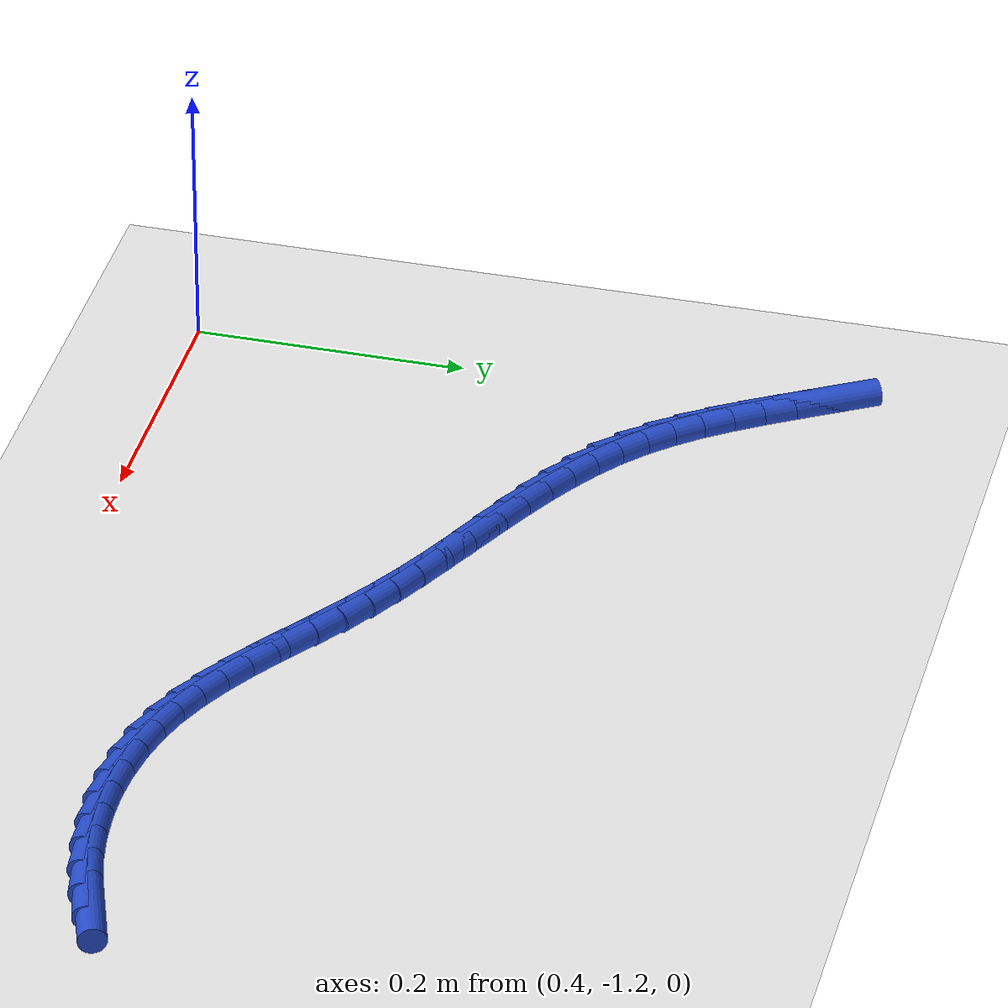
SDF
<sdf version="1.6">
 <world name="default">
  <model name="ground_plane">
   <static>1</static>
   <link name="link">
    <collision name="collision">
     <geometry><plane><normal>0 0 1</normal><size>100 100</size></plane></geometry>
     <surface><friction><ode><mu>100</mu><mu2>50</mu2></ode></friction></surface>
    </collision>
    <visual name="visual">
     <cast_shadows>0</cast_shadows>
     <geometry><plane><normal>0 0 1</normal><size>100 100</size></plane></geometry>
     <material>
      <script><uri>file://media/materials/scripts/gazebo.material</uri><name>Gazebo/WhiteGlow</name></script>
     </material>
    </visual>
   </link>
  </model>
  <model name="line">
   <link name="link_210">
    <pose>1.0827217794591588 -1.0764344914039057 0.01 0 1.57 0.3384205722470146</pose>
    <collision name="collision">
     <geometry><cylinder><radius>0.01</radius><length>0.08</length></cylinder></geometry>
    </collision>
    <visual name="visual">
     <material>
      <script><name>Gazebo/Blue</name><uri>file://media/materials/scripts/gazebo.material</uri></script>
     </material>
     <geometry><cylinder><radius>0.01</radius><length>0.08</length></cylinder></geometry>
    </visual>
   </link>
   <link name="link_211">
    <pose>1.0598111481474783 -1.0844981357043098 0.01 0 1.57 0.2739690183637851</pose>
    <collision name="collision">
     <geometry><cylinder><radius>0.01</radius><length>0.08</length></cylinder></geometry>
    </collision>
    <visual name="visual">
     <material>
      <script><name>Gazebo/Blue</name><uri>file://media/materials/scripts/gazebo.material</uri></script>
     </material>
     <geometry><cylinder><radius>0.01</radius><length>0.08</length></cylinder></geometry>
    </visual>
   </link>
   <link name="link_212">
    <pose>1.0363704554752315 -1.0910858114640698 0.01 0 1.57 0.19546453854779858</pose>
    <collision name="collision">
     <geometry><cylinder><radius>0.01</radius><length>0.08</length></cylinder></geometry>
    </collision>
    <visual name="visual">
     <material>
      <script><name>Gazebo/Blue</name><uri>file://media/materials/scripts/gazebo.material</uri></script>
     </material>
     <geometry><cylinder><radius>0.01</radius><length>0.08</length></cylinder></geometry>
    </visual>
   </link>
   <link name="link_213">
    <pose>1.0123348915349049 -1.0958446731135414 0.01 0 1.57 0.11578168401749918</pose>
    <collision name="collision">
     <geometry><cylinder><radius>0.01</radius><length>0.08</length></cylinder></geometry>
    </collision>
    <visual name="visual">
     <material>
      <script><name>Gazebo/Blue</name><uri>file://media/materials/scripts/gazebo.material</uri></script>
     </material>
     <geometry><cylinder><radius>0.01</radius><length>0.08</length></cylinder></geometry>
    </visual>
   </link>
   <link name="link_214">
    <pose>0.9878940121157465 -1.0986871923584316 0.01 0 1.57 0.036309796247968706</pose>
    <collision name="collision">
     <geometry><cylinder><radius>0.01</radius><length>0.08</length></cylinder></geometry>
    </collision>
    <visual name="visual">
     <material>
      <script><name>Gazebo/Blue</name><uri>file://media/materials/scripts/gazebo.material</uri></script>
     </material>
     <geometry><cylinder><radius>0.01</radius><length>0.08</length></cylinder></geometry>
    </visual>
   </link>
   <link name="link_215">
    <pose>0.9632902020726857 -1.0995809444972071 0.01 0 1.57 -0.04431218619685183</pose>
    <collision name="collision">
     <geometry><cylinder><radius>0.01</radius><length>0.08</length></cylinder></geometry>
    </collision>
    <visual name="visual">
     <material>
      <script><name>Gazebo/Blue</name><uri>file://media/materials/scripts/gazebo.material</uri></script>
     </material>
     <geometry><cylinder><radius>0.01</radius><length>0.08</length></cylinder></geometry>
    </visual>
   </link>
   <link name="link_216">
    <pose>0.9387658462606532 -1.0984935048283362 0.01 0 1.57 -0.12743514459132382</pose>
    <collision name="collision">
     <geometry><cylinder><radius>0.01</radius><length>0.08</length></cylinder></geometry>
    </collision>
    <visual name="visual">
     <material>
      <script><name>Gazebo/Blue</name><uri>file://media/materials/scripts/gazebo.material</uri></script>
     </material>
     <geometry><cylinder><radius>0.01</radius><length>0.08</length></cylinder></geometry>
    </visual>
   </link>
   <link name="link_217">
    <pose>0.9145633295345776 -1.0953924486502853 0.01 0 1.57 -0.21439747763694242</pose>
    <collision name="collision">
     <geometry><cylinder><radius>0.01</radius><length>0.08</length></cylinder></geometry>
    </collision>
    <visual name="visual">
     <material>
      <script><name>Gazebo/Blue</name><uri>file://media/materials/scripts/gazebo.material</uri></script>
     </material>
     <geometry><cylinder><radius>0.01</radius><length>0.08</length></cylinder></geometry>
    </visual>
   </link>
   <link name="link_218">
    <pose>0.8909250367493913 -1.090245351261522 0.01 0 1.57 -0.3064852966238337</pose>
    <collision name="collision">
     <geometry><cylinder><radius>0.01</radius><length>0.08</length></cylinder></geometry>
    </collision>
    <visual name="visual">
     <material>
      <script><name>Gazebo/Blue</name><uri>file://media/materials/scripts/gazebo.material</uri></script>
     </material>
     <geometry><cylinder><radius>0.01</radius><length>0.08</length></cylinder></geometry>
    </visual>
   </link>
   <link name="link_219">
    <pose>0.8680930837191345 -1.083020031288643 0.01 0 1.57 -0.39908870427518084</pose>
    <collision name="collision">
     <geometry><cylinder><radius>0.01</radius><length>0.08</length></cylinder></geometry>
    </collision>
    <visual name="visual">
     <material>
      <script><name>Gazebo/Blue</name><uri>file://media/materials/scripts/gazebo.material</uri></script>
     </material>
     <geometry><cylinder><radius>0.01</radius><length>0.08</length></cylinder></geometry>
    </visual>
   </link>
   <link name="link_220">
    <pose>0.8461970802127202 -1.073786060982771 0.01 0 1.57 -0.4770445023865358</pose>
    <collision name="collision">
     <geometry><cylinder><radius>0.01</radius><length>0.08</length></cylinder></geometry>
    </collision>
    <visual name="visual">
     <material>
      <script><name>Gazebo/Blue</name><uri>file://media/materials/scripts/gazebo.material</uri></script>
     </material>
     <geometry><cylinder><radius>0.01</radius><length>0.08</length></cylinder></geometry>
    </visual>
   </link>
   <link name="link_221">
    <pose>0.8250805408009964 -1.0628717651209867 0.01 0 1.57 -0.5369307318208437</pose>
    <collision name="collision">
     <geometry><cylinder><radius>0.01</radius><length>0.08</length></cylinder></geometry>
    </collision>
    <visual name="visual">
     <material>
      <script><name>Gazebo/Blue</name><uri>file://media/materials/scripts/gazebo.material</uri></script>
     </material>
     <geometry><cylinder><radius>0.01</radius><length>0.08</length></cylinder></geometry>
    </visual>
   </link>
   <link name="link_222">
    <pose>0.8045421750370375 -1.0506459913958281 0.01 0 1.57 -0.5785840659679976</pose>
    <collision name="collision">
     <geometry><cylinder><radius>0.01</radius><length>0.08</length></cylinder></geometry>
    </collision>
    <visual name="visual">
     <material>
      <script><name>Gazebo/Blue</name><uri>file://media/materials/scripts/gazebo.material</uri></script>
     </material>
     <geometry><cylinder><radius>0.01</radius><length>0.08</length></cylinder></geometry>
    </visual>
   </link>
   <link name="link_223">
    <pose>0.7843806924739195 -1.0374775874998345 0.01 0 1.57 -0.6023514608782425</pose>
    <collision name="collision">
     <geometry><cylinder><radius>0.01</radius><length>0.08</length></cylinder></geometry>
    </collision>
    <visual name="visual">
     <material>
      <script><name>Gazebo/Blue</name><uri>file://media/materials/scripts/gazebo.material</uri></script>
     </material>
     <geometry><cylinder><radius>0.01</radius><length>0.08</length></cylinder></geometry>
    </visual>
   </link>
   <link name="link_224">
    <pose>0.7643948026647172 -1.0237354011255444 0.01 0 1.57 -0.6086775720377422</pose>
    <collision name="collision">
     <geometry><cylinder><radius>0.01</radius><length>0.08</length></cylinder></geometry>
    </collision>
    <visual name="visual">
     <material>
      <script><name>Gazebo/Blue</name><uri>file://media/materials/scripts/gazebo.material</uri></script>
     </material>
     <geometry><cylinder><radius>0.01</radius><length>0.08</length></cylinder></geometry>
    </visual>
   </link>
   <link name="link_225">
    <pose>0.7443832151625056 -1.009788279965496 0.01 0 1.57 -0.5978850671872448</pose>
    <collision name="collision">
     <geometry><cylinder><radius>0.01</radius><length>0.08</length></cylinder></geometry>
    </collision>
    <visual name="visual">
     <material>
      <script><name>Gazebo/Blue</name><uri>file://media/materials/scripts/gazebo.material</uri></script>
     </material>
     <geometry><cylinder><radius>0.01</radius><length>0.08</length></cylinder></geometry>
    </visual>
   </link>
   <link name="link_226">
    <pose>0.7241446395203595 -0.996005071712228 0.01 0 1.57 -0.5701249668562856</pose>
    <collision name="collision">
     <geometry><cylinder><radius>0.01</radius><length>0.08</length></cylinder></geometry>
    </collision>
    <visual name="visual">
     <material>
      <script><name>Gazebo/Blue</name><uri>file://media/materials/scripts/gazebo.material</uri></script>
     </material>
     <geometry><cylinder><radius>0.01</radius><length>0.08</length></cylinder></geometry>
    </visual>
   </link>
   <link name="link_227">
    <pose>0.7034777852913549 -0.9827546240582793 0.01 0 1.57 -0.5281828709203871</pose>
    <collision name="collision">
     <geometry><cylinder><radius>0.01</radius><length>0.08</length></cylinder></geometry>
    </collision>
    <visual name="visual">
     <material>
      <script><name>Gazebo/Blue</name><uri>file://media/materials/scripts/gazebo.material</uri></script>
     </material>
     <geometry><cylinder><radius>0.01</radius><length>0.08</length></cylinder></geometry>
    </visual>
   </link>
   <link name="link_228">
    <pose>0.6822180183110997 -0.9703500037345674 0.01 0 1.57 -0.4908540590233366</pose>
    <collision name="collision">
     <geometry><cylinder><radius>0.01</radius><length>0.08</length></cylinder></geometry>
    </collision>
    <visual name="visual">
     <material>
      <script><name>Gazebo/Blue</name><uri>file://media/materials/scripts/gazebo.material</uri></script>
     </material>
     <geometry><cylinder><radius>0.01</radius><length>0.08</length></cylinder></geometry>
    </visual>
   </link>
   <link name="link_229">
    <pose>0.6604546723876827 -0.958717806811403 0.01 0 1.57 -0.46588380249215067</pose>
    <collision name="collision">
     <geometry><cylinder><radius>0.01</radius><length>0.08</length></cylinder></geometry>
    </collision>
    <visual name="visual">
     <material>
      <script><name>Gazebo/Blue</name><uri>file://media/materials/scripts/gazebo.material</uri></script>
     </material>
     <geometry><cylinder><radius>0.01</radius><length>0.08</length></cylinder></geometry>
    </visual>
   </link>
   <link name="link_230">
    <pose>0.6383846023270906 -0.9476210114403466 0.01 0 1.57 -0.45310470452604534</pose>
    <collision name="collision">
     <geometry><cylinder><radius>0.01</radius><length>0.08</length></cylinder></geometry>
    </collision>
    <visual name="visual">
     <material>
      <script><name>Gazebo/Blue</name><uri>file://media/materials/scripts/gazebo.material</uri></script>
     </material>
     <geometry><cylinder><radius>0.01</radius><length>0.08</length></cylinder></geometry>
    </visual>
   </link>
   <link name="link_231">
    <pose>0.6162050487004165 -0.9368220087426562 0.01 0 1.57 -0.4524657764021885</pose>
    <collision name="collision">
     <geometry><cylinder><radius>0.01</radius><length>0.08</length></cylinder></geometry>
    </collision>
    <visual name="visual">
     <material>
      <script><name>Gazebo/Blue</name><uri>file://media/materials/scripts/gazebo.material</uri></script>
     </material>
     <geometry><cylinder><radius>0.01</radius><length>0.08</length></cylinder></geometry>
    </visual>
   </link>
   <link name="link_232">
    <pose>0.5941132520787538 -0.9260831898395903 0.01 0 1.57 -0.4641187075026478</pose>
    <collision name="collision">
     <geometry><cylinder><radius>0.01</radius><length>0.08</length></cylinder></geometry>
    </collision>
    <visual name="visual">
     <material>
      <script><name>Gazebo/Blue</name><uri>file://media/materials/scripts/gazebo.material</uri></script>
     </material>
     <geometry><cylinder><radius>0.01</radius><length>0.08</length></cylinder></geometry>
    </visual>
   </link>
   <link name="link_233">
    <pose>0.5723064530331955 -0.9151669458524065 0.01 0 1.57 -0.4884292167081674</pose>
    <collision name="collision">
     <geometry><cylinder><radius>0.01</radius><length>0.08</length></cylinder></geometry>
    </collision>
    <visual name="visual">
     <material>
      <script><name>Gazebo/Blue</name><uri>file://media/materials/scripts/gazebo.material</uri></script>
     </material>
     <geometry><cylinder><radius>0.01</radius><length>0.08</length></cylinder></geometry>
    </visual>
   </link>
   <link name="link_234">
    <pose>0.5509818921348345 -0.9038356679023629 0.01 0 1.57 -0.5259379468029769</pose>
    <collision name="collision">
     <geometry><cylinder><radius>0.01</radius><length>0.08</length></cylinder></geometry>
    </collision>
    <visual name="visual">
     <material>
      <script><name>Gazebo/Blue</name><uri>file://media/materials/scripts/gazebo.material</uri></script>
     </material>
     <geometry><cylinder><radius>0.01</radius><length>0.08</length></cylinder></geometry>
    </visual>
   </link>
   <link name="link_235">
    <pose>0.5303368099547653 -0.8918517471107181 0.01 0 1.57 -0.5772543832699737</pose>
    <collision name="collision">
     <geometry><cylinder><radius>0.01</radius><length>0.08</length></cylinder></geometry>
    </collision>
    <visual name="visual">
     <material>
      <script><name>Gazebo/Blue</name><uri>file://media/materials/scripts/gazebo.material</uri></script>
     </material>
     <geometry><cylinder><radius>0.01</radius><length>0.08</length></cylinder></geometry>
    </visual>
   </link>
   <link name="link_236">
    <pose>0.5105684470640804 -0.8789775745987302 0.01 0 1.57 -0.6428582397231795</pose>
    <collision name="collision">
     <geometry><cylinder><radius>0.01</radius><length>0.08</length></cylinder></geometry>
    </collision>
    <visual name="visual">
     <material>
      <script><name>Gazebo/Blue</name><uri>file://media/materials/scripts/gazebo.material</uri></script>
     </material>
     <geometry><cylinder><radius>0.01</radius><length>0.08</length></cylinder></geometry>
    </visual>
   </link>
   <link name="link_237">
    <pose>0.49187404403387325 -0.8649755414876569 0.01 0 1.57 -0.7227818274671135</pose>
    <collision name="collision">
     <geometry><cylinder><radius>0.01</radius><length>0.08</length></cylinder></geometry>
    </collision>
    <visual name="visual">
     <material>
      <script><name>Gazebo/Blue</name><uri>file://media/materials/scripts/gazebo.material</uri></script>
     </material>
     <geometry><cylinder><radius>0.01</radius><length>0.08</length></cylinder></geometry>
    </visual>
   </link>
   <link name="link_238">
    <pose>0.4744507359269596 -0.8496081542346671 0.01 0 1.57 -0.8098519608592609</pose>
    <collision name="collision">
     <geometry><cylinder><radius>0.01</radius><length>0.08</length></cylinder></geometry>
    </collision>
    <visual name="visual">
     <material>
      <script><name>Gazebo/Blue</name><uri>file://media/materials/scripts/gazebo.material</uri></script>
     </material>
     <geometry><cylinder><radius>0.01</radius><length>0.08</length></cylinder></geometry>
    </visual>
   </link>
   <link name="link_239">
    <pose>0.4583952940277291 -0.8327476315208526 0.01 0 1.57 -0.8846215127277948</pose>
    <collision name="collision">
     <geometry><cylinder><radius>0.01</radius><length>0.08</length></cylinder></geometry>
    </collision>
    <visual name="visual">
     <material>
      <script><name>Gazebo/Blue</name><uri>file://media/materials/scripts/gazebo.material</uri></script>
     </material>
     <geometry><cylinder><radius>0.01</radius><length>0.08</length></cylinder></geometry>
    </visual>
   </link>
   <link name="link_240">
    <pose>0.44351738743231367 -0.8145800365244074 0.01 0 1.57 -0.9435597063983692</pose>
    <collision name="collision">
     <geometry><cylinder><radius>0.01</radius><length>0.08</length></cylinder></geometry>
    </collision>
    <visual name="visual">
     <material>
      <script><name>Gazebo/Blue</name><uri>file://media/materials/scripts/gazebo.material</uri></script>
     </material>
     <geometry><cylinder><radius>0.01</radius><length>0.08</length></cylinder></geometry>
    </visual>
   </link>
   <link name="link_241">
    <pose>0.4295756758880889 -0.7953471930692538 0.01 0 1.57 -0.9870858170888314</pose>
    <collision name="collision">
     <geometry><cylinder><radius>0.01</radius><length>0.08</length></cylinder></geometry>
    </collision>
    <visual name="visual">
     <material>
      <script><name>Gazebo/Blue</name><uri>file://media/materials/scripts/gazebo.material</uri></script>
     </material>
     <geometry><cylinder><radius>0.01</radius><length>0.08</length></cylinder></geometry>
    </visual>
   </link>
   <link name="link_242">
    <pose>0.41632881914243003 -0.7752909249793145 0.01 0 1.57 -1.0158753820303352</pose>
    <collision name="collision">
     <geometry><cylinder><radius>0.01</radius><length>0.08</length></cylinder></geometry>
    </collision>
    <visual name="visual">
     <material>
      <script><name>Gazebo/Blue</name><uri>file://media/materials/scripts/gazebo.material</uri></script>
     </material>
     <geometry><cylinder><radius>0.01</radius><length>0.08</length></cylinder></geometry>
    </visual>
   </link>
   <link name="link_243">
    <pose>0.4035354769427127 -0.7546530560785123 0.01 0 1.57 -1.030566813214513</pose>
    <collision name="collision">
     <geometry><cylinder><radius>0.01</radius><length>0.08</length></cylinder></geometry>
    </collision>
    <visual name="visual">
     <material>
      <script><name>Gazebo/Blue</name><uri>file://media/materials/scripts/gazebo.material</uri></script>
     </material>
     <geometry><cylinder><radius>0.01</radius><length>0.08</length></cylinder></geometry>
    </visual>
   </link>
   <link name="link_244">
    <pose>0.39095430903631295 -0.7336754101907706 0.01 0 1.57 -1.031599708747467</pose>
    <collision name="collision">
     <geometry><cylinder><radius>0.01</radius><length>0.08</length></cylinder></geometry>
    </collision>
    <visual name="visual">
     <material>
      <script><name>Gazebo/Blue</name><uri>file://media/materials/scripts/gazebo.material</uri></script>
     </material>
     <geometry><cylinder><radius>0.01</radius><length>0.08</length></cylinder></geometry>
    </visual>
   </link>
  </model>
 </world>
</sdf>
